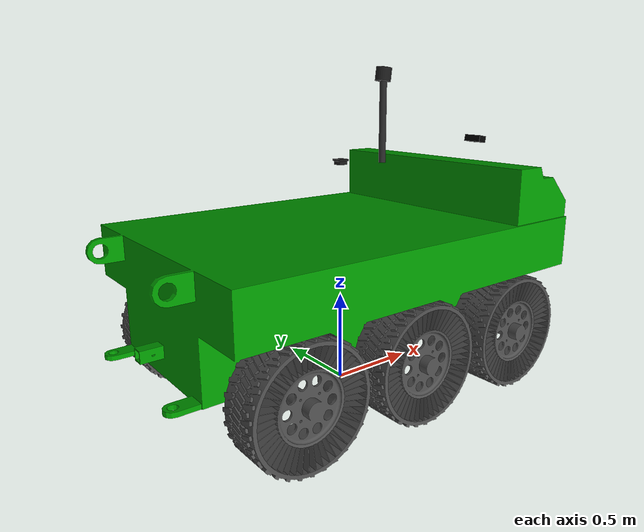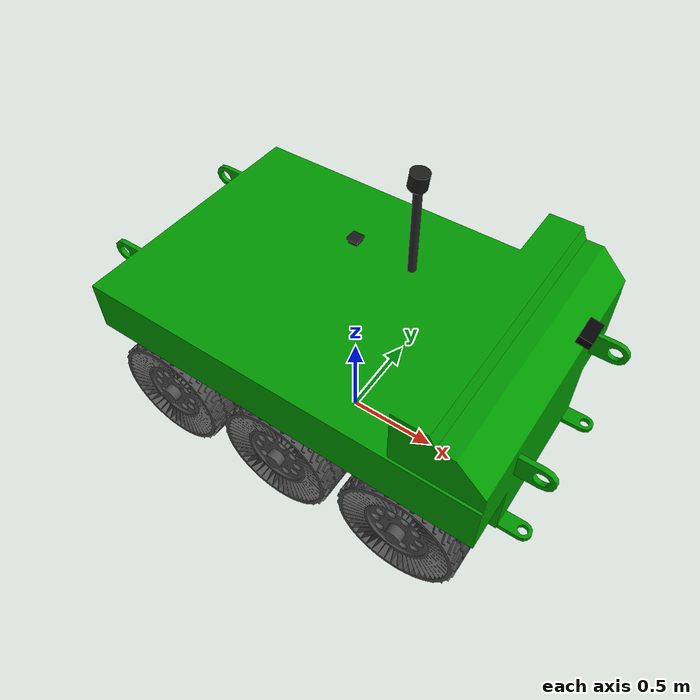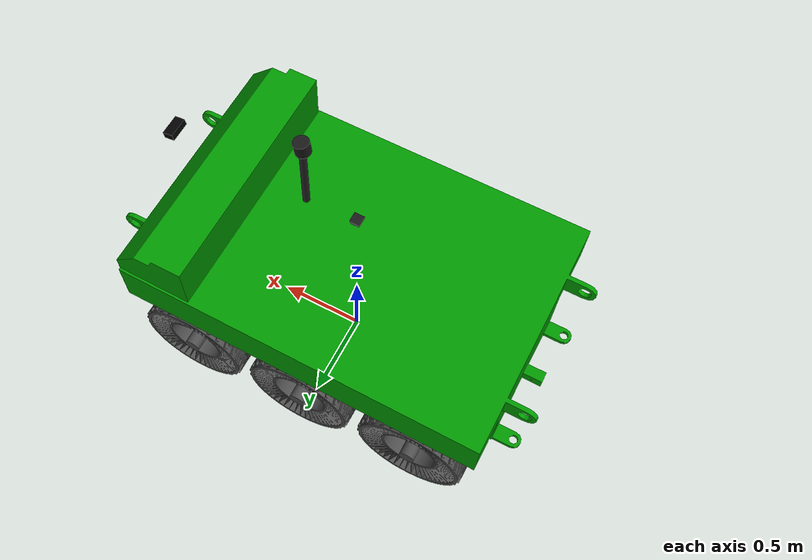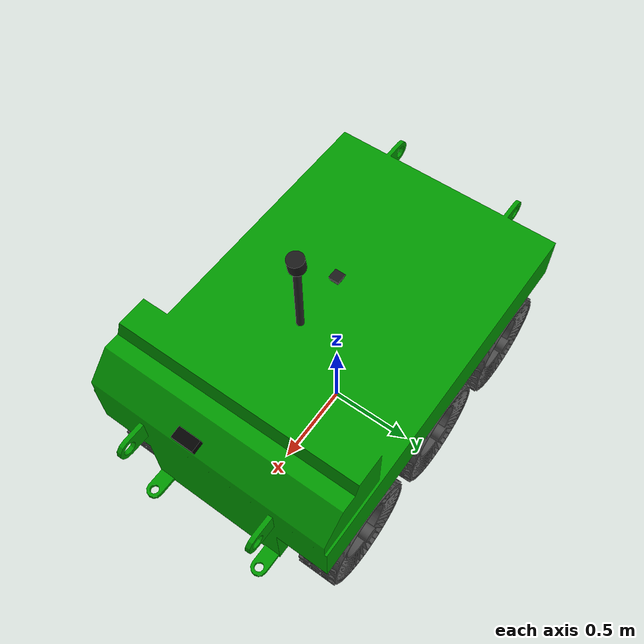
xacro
<?xml version="1.0"?>
<robot name="wolf_sensors" xmlns:xacro="http://www.ros.org/wiki/xacro">

  <xacro:include filename="$(find base_nav2_stack)/urdf/wolf.urdf.xacro"/>

  <!--       Top Sensor Mount         -->
  <link name="top_base_link"/>
  <joint name="top_link_joint" type="fixed">
    <origin xyz="0 0 0.905" rpy="0 0 0"/>
    <parent link="wolf_chassis_link"/>
    <child link="top_base_link"/>
  </joint>

  <!-- Lidar mast (visual support)    -->
  <link name="sensor_mast">
    <visual>
      <origin xyz="0 0 0.24" rpy="0 0 0"/>
      <geometry>
        <cylinder radius="0.02" length="0.48"/>
      </geometry>
      <material name="mast_darkgray">
        <color rgba="0.15 0.15 0.15 1.0"/>
      </material>
    </visual>
  </link>
  <joint name="sensor_mast_joint" type="fixed">
    <parent link="top_base_link"/>
    <child link="sensor_mast"/>
    <origin xyz="0.3 0 0" rpy="0 0 0"/>
  </joint>

  <!-- Ouster LiDAR (front of roof)   -->
  <link name="os_sensor">
    <visual>
      <origin xyz="0 0 0" rpy="0 0 0"/>
      <geometry>
        <cylinder radius="0.0435" length="0.0735"/>
      </geometry>
      <material name="os1_darkgray">
        <color rgba="0.1 0.1 0.1 1.0"/>
      </material>
    </visual>
    <collision>
      <origin xyz="0 0 0" rpy="0 0 0"/>
      <geometry>
        <cylinder radius="0.0435" length="0.0735"/>
      </geometry>
    </collision>
    <inertial>
      <mass value="0.425"/>
      <inertia ixx="0.001" ixy="0" ixz="0" iyy="0.001" iyz="0" izz="0.001"/>
    </inertial>
  </link>

  <joint name="os_sensor_joint" type="fixed">
    <parent link="top_base_link"/>
    <child link="os_sensor"/>
    <origin xyz="0.3 0 0.48" rpy="0 0.127409 0"/>
  </joint>

  <!-- os_lidar_link: Virtual frame for pointcloud data -->
  <link name="os_lidar_link"/>
  <joint name="os_lidar_joint" type="fixed">
    <parent link="os_sensor"/>
    <child link="os_lidar_link"/>
    <origin xyz="0 0 0" rpy="0 0 0"/>
  </joint>

  <!-- Front RGB-D Camera Mount       -->
  <xacro:property name="camera_x" value="1.1"/>
  <xacro:property name="camera_y" value="0.0"/>
  <xacro:property name="camera_z" value="1.0"/>
  <xacro:property name="camera_pitch" value="0.1745"/>

  <link name="camera_link">
    <visual>
      <origin xyz="0 0 0" rpy="0 0 0"/>
      <geometry>
        <box size="0.06 0.12 0.04"/>
      </geometry>
      <material name="black">
        <color rgba="0.01 0.01 0.01 1.0"/>
      </material>
    </visual>

    <collision>
      <origin xyz="0 0 0" rpy="0 0 0"/>
      <geometry>
        <box size="0.06 0.12 0.04"/>
      </geometry>
    </collision>

    <inertial>
      <origin xyz="0 0 0" rpy="0 0 0"/>
      <mass value="0.10"/>
      <inertia
        ixx="0.0001" ixy="0.0" ixz="0.0"
        iyy="0.0001" iyz="0.0"
        izz="0.0001"/>
    </inertial>
  </link>

  <joint name="camera_joint" type="fixed">
    <parent link="wolf_chassis_link"/>
    <child link="camera_link"/>
    <origin xyz="${camera_x} ${camera_y} ${camera_z}" rpy="0 ${camera_pitch} 0"/>
  </joint>

  <!-- Optical frame for ROS camera convention:
       z forward, x right, y down. -->
  <link name="camera_optical_link"/>
  <joint name="camera_optical_joint" type="fixed">
    <parent link="camera_link"/>
    <child link="camera_optical_link"/>
    <origin xyz="0 0 0" rpy="-1.57079632679 0 -1.57079632679"/>
  </joint>

</robot>

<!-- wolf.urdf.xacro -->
<robot name="wolf" xmlns:xacro="http://www.ros.org/wiki/xacro">

  <!-- Wolf vehicle parameters (source: wolf_description/urdf/wolf.urdf) -->
  <xacro:property name="wheel_radius" value="0.32029"/>
  <xacro:property name="wheel_width" value="0.30"/>
  <xacro:property name="wheel_y" value="0.5957"/>
  <xacro:property name="wheel_x" value="0.6985"/>
  <xacro:property name="wheel_separation" value="1.1914"/>
  <xacro:property name="wheelbase" value="1.397"/>
  <xacro:property name="chassis_z" value="0.32"/>
  <xacro:property name="vehicle_mass" value="900"/>
  <xacro:property name="wheel_mass" value="80"/>

  <!-- base_link (ground projected)   -->
  <link name="base_link"/>

  <joint name="base_to_wolf_base_joint" type="fixed">
    <parent link="base_link"/>
    <child link="wolf_base_link"/>
    <origin xyz="0 0 0" rpy="0 0 0"/>
  </joint>

  <link name="wolf_base_link">
    <inertial>
      <mass value="0.0001"/>
      <origin xyz="0 0 0" rpy="0 0 0"/>
      <inertia ixx="0.0001" ixy="0" ixz="0" iyy="0.0001" iyz="0" izz="0.0001"/>
    </inertial>
  </link>

  <joint name="wolf_ground_to_chassis_center" type="fixed">
    <parent link="wolf_base_link"/>
    <child link="wolf_chassis_link"/>
    <origin xyz="0 0 ${chassis_z}" rpy="0 0 0"/>
  </joint>

  <!-- Chassis (physical body)        -->
  <link name="wolf_chassis_link">
    <visual>
      <geometry>
        <mesh filename="$(find base_nav2_stack)/meshes/Wolf/Wolf_Body.stl"/>
      </geometry>
      <material name="wolf_green">
        <color rgba="0.0 0.6 0.0 1.0"/>
      </material>
    </visual>

    <collision>
      <origin xyz="0 0 0" rpy="0 0 0"/>
      <geometry>
        <box size="1.6 1.3 0.5"/>
      </geometry>
    </collision>

    <inertial>
      <origin xyz="0 0 0" rpy="0 0 0"/>
      <mass value="${vehicle_mass}"/>
      <inertia ixx="213.3375" ixy="0" ixz="0" iyy="515.9775" iyz="0" izz="605.1"/>
    </inertial>
  </link>

  <!-- Left wheels (front/center/rear) -->
  <xacro:macro name="wolf_wheel" params="name x y">
    <joint name="wolf_${name}_wheel_joint" type="continuous">
      <parent link="wolf_chassis_link"/>
      <child link="wolf_${name}_wheel"/>
      <origin xyz="${x} ${y} 0" rpy="0 0 0"/>
      <axis xyz="0 1 0"/>
      <limit effort="400" velocity="50"/>
      <dynamics damping="1.0" friction="0.0"/>
    </joint>

    <link name="wolf_${name}_wheel">
      <visual>
        <origin xyz="0 0 0" rpy="1.5708 0 0"/>
        <geometry>
          <mesh filename="$(find base_nav2_stack)/meshes/Wolf/Wolf_Wheel.stl"/>
        </geometry>
        <material name="wheel_black">
          <color rgba="0.3 0.3 0.3 1.0"/>
        </material>
      </visual>

      <collision>
        <origin xyz="0 0 0" rpy="1.5708 0 0"/>
        <geometry>
          <cylinder length="${wheel_width}" radius="${wheel_radius}"/>
        </geometry>
      </collision>

      <inertial>
        <origin xyz="0 0 0" rpy="0 0 0"/>
        <mass value="${wheel_mass}"/>
        <inertia ixx="2.396386" ixy="0" ixz="0" iyy="2.396386" iyz="0" izz="4.096"/>
      </inertial>
    </link>
  </xacro:macro>

  <xacro:wolf_wheel name="left_front" x="${wheel_x}" y="${wheel_y}"/>
  <xacro:wolf_wheel name="left_center" x="0" y="${wheel_y}"/>
  <xacro:wolf_wheel name="left_rear" x="${-wheel_x}" y="${wheel_y}"/>
  <xacro:wolf_wheel name="right_front" x="${wheel_x}" y="${-wheel_y}"/>
  <xacro:wolf_wheel name="right_center" x="0" y="${-wheel_y}"/>
  <xacro:wolf_wheel name="right_rear" x="${-wheel_x}" y="${-wheel_y}"/>

  <!-- VectorNav IMU + GPS mounts     -->
  <link name="imu_link">
    <visual>
      <origin xyz="0 0 0" rpy="0 0 0"/>
      <geometry>
        <box size="0.05 0.05 0.02"/>
      </geometry>
      <material name="imu_darkgray">
        <color rgba="0.1 0.1 0.1 1.0"/>
      </material>
    </visual>
    <inertial>
      <mass value="0.05"/>
      <inertia ixx="0.0001" ixy="0" ixz="0" iyy="0.0001" iyz="0" izz="0.0001"/>
    </inertial>
  </link>

  <joint name="imu_joint" type="fixed">
    <parent link="wolf_base_link"/>
    <child link="imu_link"/>
    <origin xyz="0 0 1.245" rpy="0 0 0"/>
  </joint>

  <link name="gps_link">
    <visual>
      <origin xyz="0 0 0" rpy="0 0 0"/>
      <geometry>
        <box size="0.06 0.06 0.01"/>
      </geometry>
      <material name="gps_darkgray">
        <color rgba="0.1 0.1 0.1 1.0"/>
      </material>
    </visual>
    <inertial>
      <mass value="0.05"/>
      <inertia ixx="0.0001" ixy="0" ixz="0" iyy="0.0001" iyz="0" izz="0.0001"/>
    </inertial>
  </link>

  <joint name="gps_joint" type="fixed">
    <parent link="wolf_base_link"/>
    <child link="gps_link"/>
    <origin xyz="0 0 1.26" rpy="0 0 0"/>
  </joint>

</robot>
